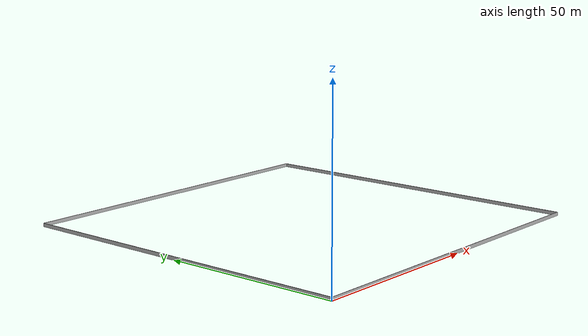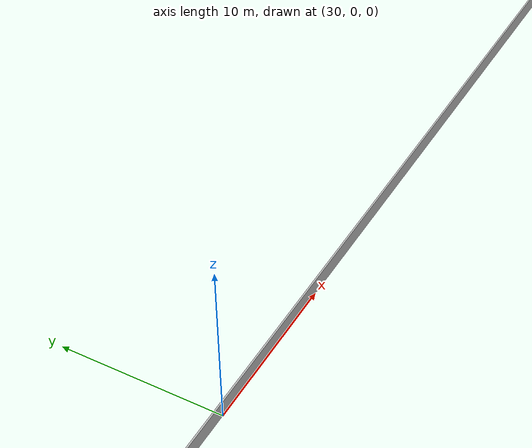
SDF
<sdf version="1.6">
<world name="default">
  <physics name="1ms" type="ignored">
    <max_step_size>0.001</max_step_size>
    <real_time_factor>1.0</real_time_factor>
  </physics>
  <plugin
    filename="gz-sim-physics-system"
    name="gz::sim::systems::Physics">
  </plugin>
  <plugin
    filename="gz-sim-user-commands-system"
    name="gz::sim::systems::UserCommands">
  </plugin>
  <plugin
    filename="gz-sim-scene-broadcaster-system"
    name="gz::sim::systems::SceneBroadcaster">
  </plugin>
  <light type="directional" name="sun">
    <cast_shadows>true</cast_shadows>
    <pose>0 0 10 0 0 0</pose>
    <diffuse>0.8 0.8 0.8 1</diffuse>
    <specular>0.2 0.2 0.2 1</specular>
    <attenuation>
      <range>1000</range>
      <constant>0.9</constant>
      <linear>0.01</linear>
      <quadratic>0.001</quadratic>
    </attenuation>
    <direction>-0.5 0.1 -0.9</direction>
  </light>
  <scene>
    <grid>true</grid>
    <ambient>0.4 0.4 0.4 1</ambient>
  </scene>
  <model name="wall_0">
    <static>true</static>
    <link name="wall_link">
      <visual name="visual">
        <geometry>
          <box>
            <size>100.0 0.1 1.0</size>
          </box>
        </geometry>
      </visual>
      <collision name="collision">
        <geometry>
          <box>
            <size>100.0 0.1 1.0</size>
          </box>
        </geometry>
      </collision>
      <pose>50.0 0.05 0.5 0 0 0</pose>
    </link>
  </model>
  <model name="wall_1">
    <static>true</static>
    <link name="wall_link">
      <visual name="visual">
        <geometry>
          <box>
            <size>0.1 100.0 1.0</size>
          </box>
        </geometry>
      </visual>
      <collision name="collision">
        <geometry>
          <box>
            <size>0.1 100.0 1.0</size>
          </box>
        </geometry>
      </collision>
      <pose>0.05 50.0 0.5 0 0 0</pose>
    </link>
  </model>
  <model name="wall_2">
    <static>true</static>
    <link name="wall_link">
      <visual name="visual">
        <geometry>
          <box>
            <size>100.0 0.1 1.0</size>
          </box>
        </geometry>
      </visual>
      <collision name="collision">
        <geometry>
          <box>
            <size>100.0 0.1 1.0</size>
          </box>
        </geometry>
      </collision>
      <pose>50.0 99.95 0.5 0 0 0</pose>
    </link>
  </model>
  <model name="wall_3">
    <static>true</static>
    <link name="wall_link">
      <visual name="visual">
        <geometry>
          <box>
            <size>0.1 100.0 1.0</size>
          </box>
        </geometry>
      </visual>
      <collision name="collision">
        <geometry>
          <box>
            <size>0.1 100.0 1.0</size>
          </box>
        </geometry>
      </collision>
      <pose>99.95 50.0 0.5 0 0 0</pose>
    </link>
  </model>
</world>
</sdf>
